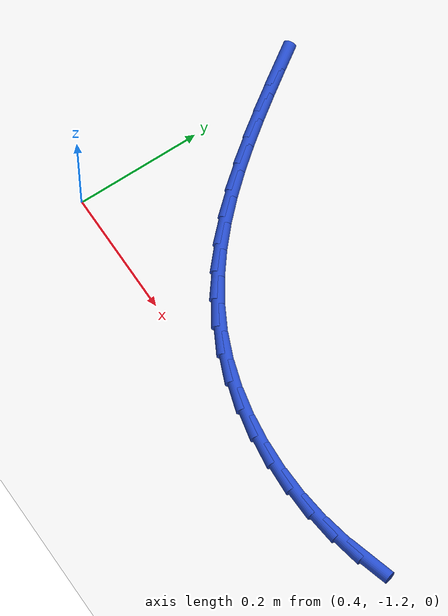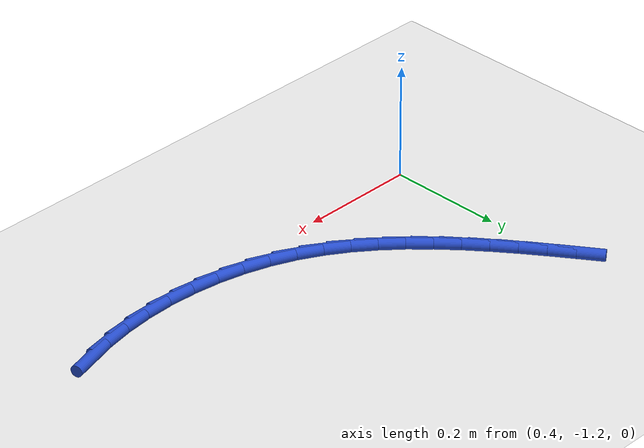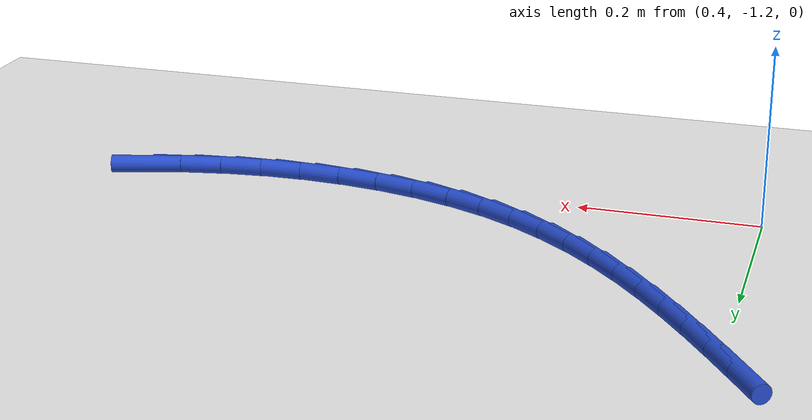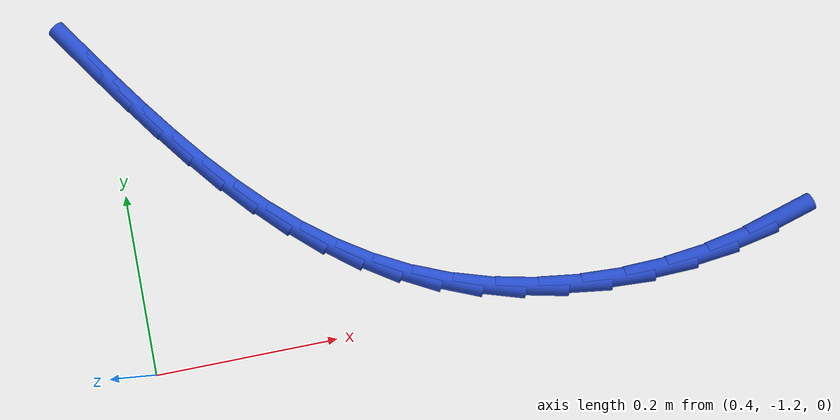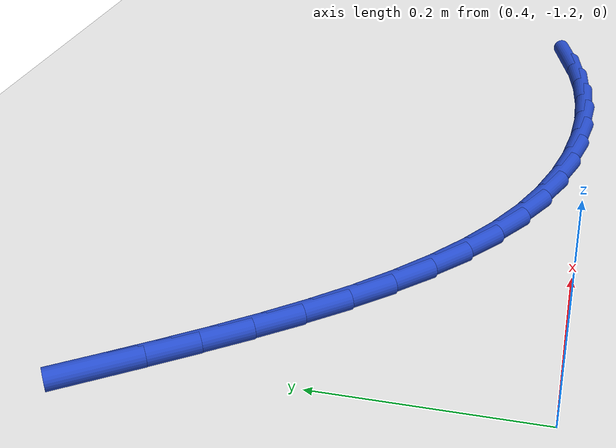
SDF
<sdf version="1.6">
 <world name="default">
  <model name="ground_plane">
   <static>1</static>
   <link name="link">
    <collision name="collision">
     <geometry><plane><normal>0 0 1</normal><size>100 100</size></plane></geometry>
     <surface><friction><ode><mu>100</mu><mu2>50</mu2></ode></friction></surface>
    </collision>
    <visual name="visual">
     <cast_shadows>0</cast_shadows>
     <geometry><plane><normal>0 0 1</normal><size>100 100</size></plane></geometry>
     <material>
      <script><uri>file://media/materials/scripts/gazebo.material</uri><name>Gazebo/WhiteGlow</name></script>
     </material>
    </visual>
   </link>
  </model>
  <model name="line">
   <link name="link_120">
    <pose>1.1003374542946152 -1.1659361771492187 0.01 0 1.57 0.2802137477324504</pose>
    <collision name="collision">
     <geometry><cylinder><radius>0.01</radius><length>0.08</length></cylinder></geometry>
    </collision>
    <visual name="visual">
     <material>
      <script><name>Gazebo/Blue</name><uri>file://media/materials/scripts/gazebo.material</uri></script>
     </material>
     <geometry><cylinder><radius>0.01</radius><length>0.08</length></cylinder></geometry>
    </visual>
   </link>
   <link name="link_121">
    <pose>1.0547231164147393 -1.1790633341325767 0.01 0 1.57 0.1926410894810026</pose>
    <collision name="collision">
     <geometry><cylinder><radius>0.01</radius><length>0.08</length></cylinder></geometry>
    </collision>
    <visual name="visual">
     <material>
      <script><name>Gazebo/Blue</name><uri>file://media/materials/scripts/gazebo.material</uri></script>
     </material>
     <geometry><cylinder><radius>0.01</radius><length>0.08</length></cylinder></geometry>
    </visual>
   </link>
   <link name="link_122">
    <pose>1.0079196670303812 -1.188192815484317 0.01 0 1.57 0.10875032442391167</pose>
    <collision name="collision">
     <geometry><cylinder><radius>0.01</radius><length>0.08</length></cylinder></geometry>
    </collision>
    <visual name="visual">
     <material>
      <script><name>Gazebo/Blue</name><uri>file://media/materials/scripts/gazebo.material</uri></script>
     </material>
     <geometry><cylinder><radius>0.01</radius><length>0.08</length></cylinder></geometry>
    </visual>
   </link>
   <link name="link_123">
    <pose>0.9604270572249103 -1.193378109868202 0.01 0 1.57 0.027144058986366595</pose>
    <collision name="collision">
     <geometry><cylinder><radius>0.01</radius><length>0.08</length></cylinder></geometry>
    </collision>
    <visual name="visual">
     <material>
      <script><name>Gazebo/Blue</name><uri>file://media/materials/scripts/gazebo.material</uri></script>
     </material>
     <geometry><cylinder><radius>0.01</radius><length>0.08</length></cylinder></geometry>
    </visual>
   </link>
   <link name="link_124">
    <pose>0.9127452380816982 -1.194672705947992 0.01 0 1.57 -0.053622932102933576</pose>
    <collision name="collision">
     <geometry><cylinder><radius>0.01</radius><length>0.08</length></cylinder></geometry>
    </collision>
    <visual name="visual">
     <material>
      <script><name>Gazebo/Blue</name><uri>file://media/materials/scripts/gazebo.material</uri></script>
     </material>
     <geometry><cylinder><radius>0.01</radius><length>0.08</length></cylinder></geometry>
    </visual>
   </link>
   <link name="link_125">
    <pose>0.8653741606841147 -1.192130092387448 0.01 0 1.57 -0.13504674948774345</pose>
    <collision name="collision">
     <geometry><cylinder><radius>0.01</radius><length>0.08</length></cylinder></geometry>
    </collision>
    <visual name="visual">
     <material>
      <script><name>Gazebo/Blue</name><uri>file://media/materials/scripts/gazebo.material</uri></script>
     </material>
     <geometry><cylinder><radius>0.01</radius><length>0.08</length></cylinder></geometry>
    </visual>
   </link>
   <link name="link_126">
    <pose>0.8188137761155304 -1.185803757850331 0.01 0 1.57 -0.2186914569160068</pose>
    <collision name="collision">
     <geometry><cylinder><radius>0.01</radius><length>0.08</length></cylinder></geometry>
    </collision>
    <visual name="visual">
     <material>
      <script><name>Gazebo/Blue</name><uri>file://media/materials/scripts/gazebo.material</uri></script>
     </material>
     <geometry><cylinder><radius>0.01</radius><length>0.08</length></cylinder></geometry>
    </visual>
   </link>
   <link name="link_127">
    <pose>0.7735640354593178 -1.1757471910004018 0.01 0 1.57 -0.30620718602702346</pose>
    <collision name="collision">
     <geometry><cylinder><radius>0.01</radius><length>0.08</length></cylinder></geometry>
    </collision>
    <visual name="visual">
     <material>
      <script><name>Gazebo/Blue</name><uri>file://media/materials/scripts/gazebo.material</uri></script>
     </material>
     <geometry><cylinder><radius>0.01</radius><length>0.08</length></cylinder></geometry>
    </visual>
   </link>
   <link name="link_128">
    <pose>0.7301248897988466 -1.1620138805014215 0.01 0 1.57 -0.39924046355563947</pose>
    <collision name="collision">
     <geometry><cylinder><radius>0.01</radius><length>0.08</length></cylinder></geometry>
    </collision>
    <visual name="visual">
     <material>
      <script><name>Gazebo/Blue</name><uri>file://media/materials/scripts/gazebo.material</uri></script>
     </material>
     <geometry><cylinder><radius>0.01</radius><length>0.08</length></cylinder></geometry>
    </visual>
   </link>
   <link name="link_129">
    <pose>0.6889905898643617 -1.1446593934304792 0.01 0 1.57 -0.49437905527824083</pose>
    <collision name="collision">
     <geometry><cylinder><radius>0.01</radius><length>0.08</length></cylinder></geometry>
    </collision>
    <visual name="visual">
     <material>
      <script><name>Gazebo/Blue</name><uri>file://media/materials/scripts/gazebo.material</uri></script>
     </material>
     <geometry><cylinder><radius>0.01</radius><length>0.08</length></cylinder></geometry>
    </visual>
   </link>
   <link name="link_130">
    <pose>0.6503716275324464 -1.1238427585573785 0.01 0 1.57 -0.5835834790691237</pose>
    <collision name="collision">
     <geometry><cylinder><radius>0.01</radius><length>0.08</length></cylinder></geometry>
    </collision>
    <visual name="visual">
     <material>
      <script><name>Gazebo/Blue</name><uri>file://media/materials/scripts/gazebo.material</uri></script>
     </material>
     <geometry><cylinder><radius>0.01</radius><length>0.08</length></cylinder></geometry>
    </visual>
   </link>
   <link name="link_131">
    <pose>0.6140692509119164 -1.099872219565925 0.01 0 1.57 -0.6645268661736847</pose>
    <collision name="collision">
     <geometry><cylinder><radius>0.01</radius><length>0.08</length></cylinder></geometry>
    </collision>
    <visual name="visual">
     <material>
      <script><name>Gazebo/Blue</name><uri>file://media/materials/scripts/gazebo.material</uri></script>
     </material>
     <geometry><cylinder><radius>0.01</radius><length>0.08</length></cylinder></geometry>
    </visual>
   </link>
   <link name="link_132">
    <pose>0.5798528510326513 -1.0730676355918094 0.01 0 1.57 -0.7361146263315971</pose>
    <collision name="collision">
     <geometry><cylinder><radius>0.01</radius><length>0.08</length></cylinder></geometry>
    </collision>
    <visual name="visual">
     <material>
      <script><name>Gazebo/Blue</name><uri>file://media/materials/scripts/gazebo.material</uri></script>
     </material>
     <geometry><cylinder><radius>0.01</radius><length>0.08</length></cylinder></geometry>
    </visual>
   </link>
   <link name="link_133">
    <pose>0.5474918189245286 -1.0437488657707226 0.01 0 1.57 -0.7978767299426021</pose>
    <collision name="collision">
     <geometry><cylinder><radius>0.01</radius><length>0.08</length></cylinder></geometry>
    </collision>
    <visual name="visual">
     <material>
      <script><name>Gazebo/Blue</name><uri>file://media/materials/scripts/gazebo.material</uri></script>
     </material>
     <geometry><cylinder><radius>0.01</radius><length>0.08</length></cylinder></geometry>
    </visual>
   </link>
   <link name="link_134">
    <pose>0.516755545617427 -1.0122357692383548 0.01 0 1.57 -0.849799030941451</pose>
    <collision name="collision">
     <geometry><cylinder><radius>0.01</radius><length>0.08</length></cylinder></geometry>
    </collision>
    <visual name="visual">
     <material>
      <script><name>Gazebo/Blue</name><uri>file://media/materials/scripts/gazebo.material</uri></script>
     </material>
     <geometry><cylinder><radius>0.01</radius><length>0.08</length></cylinder></geometry>
    </visual>
   </link>
   <link name="link_135">
    <pose>0.48741342214122463 -0.9788482051303972 0.01 0 1.57 -0.8921440463195729</pose>
    <collision name="collision">
     <geometry><cylinder><radius>0.01</radius><length>0.08</length></cylinder></geometry>
    </collision>
    <visual name="visual">
     <material>
      <script><name>Gazebo/Blue</name><uri>file://media/materials/scripts/gazebo.material</uri></script>
     </material>
     <geometry><cylinder><radius>0.01</radius><length>0.08</length></cylinder></geometry>
    </visual>
   </link>
   <link name="link_136">
    <pose>0.4592348395257997 -0.9439060325825398 0.01 0 1.57 -0.9252998660954854</pose>
    <collision name="collision">
     <geometry><cylinder><radius>0.01</radius><length>0.08</length></cylinder></geometry>
    </collision>
    <visual name="visual">
     <material>
      <script><name>Gazebo/Blue</name><uri>file://media/materials/scripts/gazebo.material</uri></script>
     </material>
     <geometry><cylinder><radius>0.01</radius><length>0.08</length></cylinder></geometry>
    </visual>
   </link>
   <link name="link_137">
    <pose>0.43198918880103154 -0.9077291107304744 0.01 0 1.57 -0.9496694959445738</pose>
    <collision name="collision">
     <geometry><cylinder><radius>0.01</radius><length>0.08</length></cylinder></geometry>
    </collision>
    <visual name="visual">
     <material>
      <script><name>Gazebo/Blue</name><uri>file://media/materials/scripts/gazebo.material</uri></script>
     </material>
     <geometry><cylinder><radius>0.01</radius><length>0.08</length></cylinder></geometry>
    </visual>
   </link>
   <link name="link_138">
    <pose>0.4054458609967983 -0.8706372987098915 0.01 0 1.57 -0.9655975320030099</pose>
    <collision name="collision">
     <geometry><cylinder><radius>0.01</radius><length>0.08</length></cylinder></geometry>
    </collision>
    <visual name="visual">
     <material>
      <script><name>Gazebo/Blue</name><uri>file://media/materials/scripts/gazebo.material</uri></script>
     </material>
     <geometry><cylinder><radius>0.01</radius><length>0.08</length></cylinder></geometry>
    </visual>
   </link>
   <link name="link_139">
    <pose>0.37937424714297807 -0.8329504556564815 0.01 0 1.57 -0.9733254194718332</pose>
    <collision name="collision">
     <geometry><cylinder><radius>0.01</radius><length>0.08</length></cylinder></geometry>
    </collision>
    <visual name="visual">
     <material>
      <script><name>Gazebo/Blue</name><uri>file://media/materials/scripts/gazebo.material</uri></script>
     </material>
     <geometry><cylinder><radius>0.01</radius><length>0.08</length></cylinder></geometry>
    </visual>
   </link>
  </model>
 </world>
</sdf>
